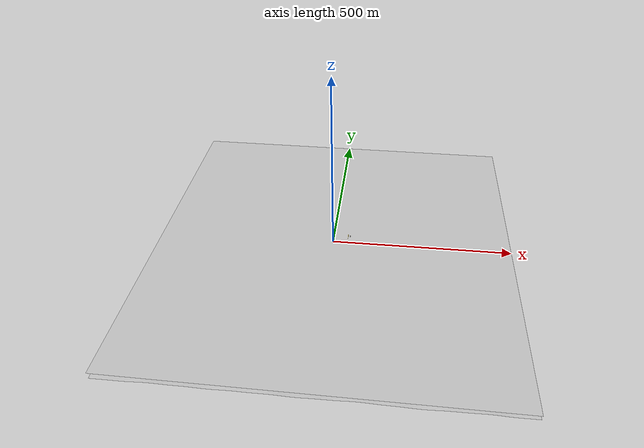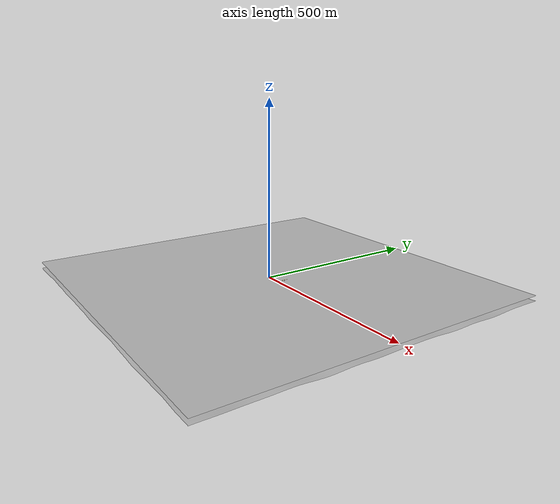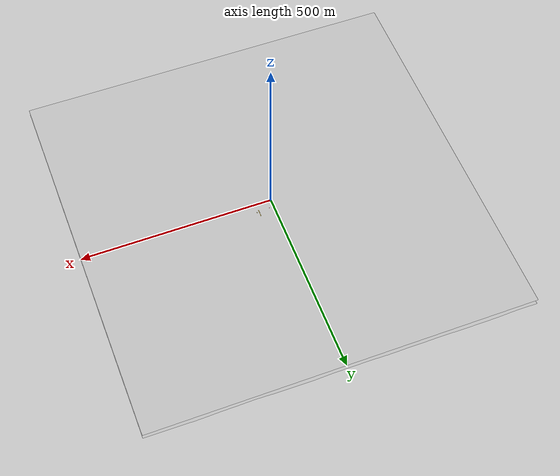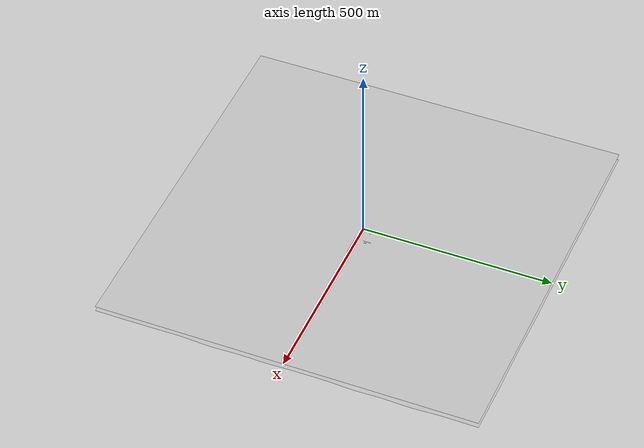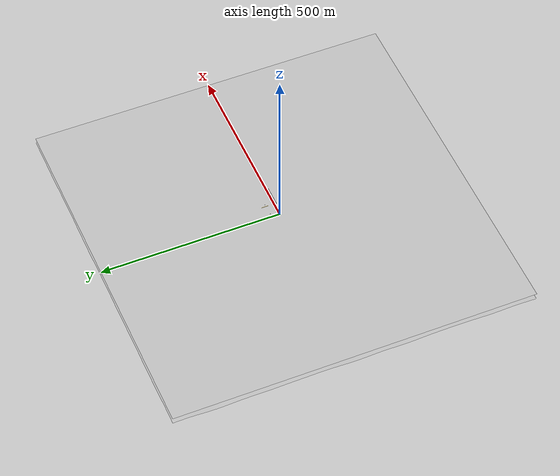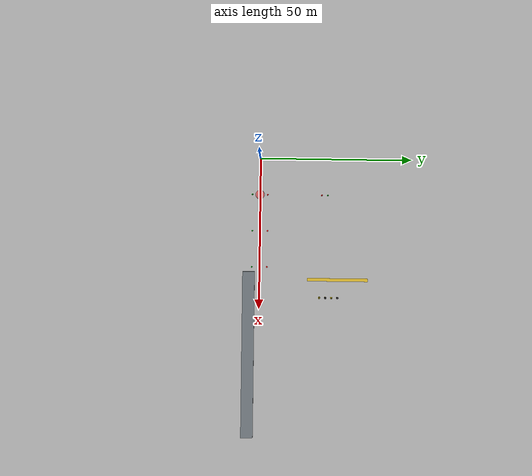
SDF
<sdf version="1.9">
 <world name="practice_world">
  <physics name="1ms" type="ignored">
   <max_step_size>0.002</max_step_size>
   <real_time_factor>1.0</real_time_factor>
  </physics>
  <scene><grid>false</grid></scene>
  <plugin filename="gz-sim-physics-system" name="gz::sim::systems::Physics"/>
  <plugin filename="gz-sim-user-commands-system" name="gz::sim::systems::UserCommands"/>
  <plugin filename="gz-sim-scene-broadcaster-system" name="gz::sim::systems::SceneBroadcaster"/>
  <plugin filename="gz-sim-contact-system" name="gz::sim::systems::Contact"/>
  <plugin filename="gz-sim-sensors-system" name="gz::sim::systems::Sensors">
   <render_engine>ogre2</render_engine>
  </plugin>
  <plugin filename="gz-sim-imu-system" name="gz::sim::systems::Imu"/>
  <plugin filename="gz-sim-navsat-system" name="gz::sim::systems::NavSat"/>
  <plugin filename="libscoring_system.so" name="regatta::ScoringSystem">
   <world_name>practice_world</world_name>
   <robot_name>blueboat</robot_name>
   <robot_link>base_link</robot_link>
   <activation_radius>3.0</activation_radius>
   <validation_radius>0.3</validation_radius>
   <cardinal_radius>20.0</cardinal_radius>
   <cardinal_penalty>2.0</cardinal_penalty>
   <max_points_per_waypoint>2.0</max_points_per_waypoint>
   <timeout>180.0</timeout>
   <output_file>scoring_result.json</output_file>
   <exit_on_finish>false</exit_on_finish>
  </plugin>
  <plugin filename="gz-sim-buoyancy-system" name="gz::sim::systems::Buoyancy">
   <graded_buoyancy>
    <default_density>1000.0</default_density>
    <density_change><above_depth>0</above_depth><density>1.2</density></density_change>
   </graded_buoyancy>
   <enable>blueboat</enable>
  </plugin>
  <plugin filename="libwave_simulation_system.so" name="regatta::WaveSimulationSystem">
   <stream_intensity>0.05</stream_intensity>
   <stream_direction_deg>45.0</stream_direction_deg>
   <waves>
    <wave>
     <amplitude>0.14</amplitude>
     <period>4.0</period>
     <direction_deg>30.0</direction_deg>
     <steepness>0.5</steepness>
    </wave>
    <wave>
     <amplitude>0.06</amplitude>
     <period>2.5</period>
     <direction_deg>60.0</direction_deg>
     <steepness>0.4</steepness>
    </wave>
    <wave>
     <amplitude>0.03</amplitude>
     <period>1.5</period>
     <direction_deg>15.0</direction_deg>
     <steepness>0.2</steepness>
    </wave>
   </waves>
   <robot_name>blueboat</robot_name>
   <robot_link>base_link</robot_link>
   <wave_heave_stiffness>100.0</wave_heave_stiffness>
   <wave_heave_damping>150.0</wave_heave_damping>
   <wave_roll_stiffness>15.0</wave_roll_stiffness>
   <wave_roll_damping>30.0</wave_roll_damping>
   <wave_pitch_stiffness>15.0</wave_pitch_stiffness>
   <wave_pitch_damping>30.0</wave_pitch_damping>
   <buoy_heave_amplitude_scale>1.0</buoy_heave_amplitude_scale>
   <buoy_tilt_scale>0.8</buoy_tilt_scale>
  </plugin>
  <plugin filename="libsemantic_buoy_sensor_system.so" name="regatta::SemanticBuoySensorSystem">
   <robot_name>blueboat</robot_name>
   <robot_link>base_link</robot_link>
   <topic>/blueboat/buoy_observations</topic>
   <legacy_topic>/blueboat/detected_buoys</legacy_topic>
   <publish_legacy_pose_v>true</publish_legacy_pose_v>
   <update_rate>1.0</update_rate>
   <fov_deg>110.0</fov_deg>
   <min_range>0.5</min_range>
   <max_range>35.0</max_range>
   <enable_noise>true</enable_noise>
   <noise_type>gaussian</noise_type>
   <range_noise_stddev>0.25</range_noise_stddev>
   <bearing_noise_deg_stddev>1.5</bearing_noise_deg_stddev>
   <range_noise_max>0.5</range_noise_max>
   <bearing_noise_max_deg>3.0</bearing_noise_max_deg>
  </plugin>
  <spherical_coordinates>
   <surface_model>EARTH_WGS84</surface_model>
   <world_frame_orientation>ENU</world_frame_orientation>
   <latitude_deg>48.0</latitude_deg>
   <longitude_deg>-4.5</longitude_deg>
   <elevation>0.0</elevation>
   <heading_deg>0.0</heading_deg>
  </spherical_coordinates>
  <light type="directional" name="sun">
   <pose>0 0 50 0 0 0</pose>
   <diffuse>0.9 0.9 0.9 1</diffuse>
   <specular>0.3 0.3 0.3 1</specular>
   <direction>-0.5 0.2 -1.0</direction>
  </light>
  <include><uri>model://waves</uri><name>waves</name></include>
  <include><uri>model://seafloor</uri><name>seafloor</name></include>
  <include>
   <uri>model://red_cylinder_buoy</uri>
   <name>gate_port_10</name>
   <pose>12.0 20.5 0.4 0 0 0</pose>
  </include>
  <include>
   <uri>model://green_cone_buoy</uri>
   <name>gate_starboard_10</name>
   <pose>12.0 22.5 0.4 0 0 0</pose>
  </include>
  <include>
   <uri>model://cardinal_south</uri>
   <name>cardinal_south</name>
   <pose>46.0 20.0 0.6 0 0 0</pose>
  </include>
  <include>
   <uri>model://cardinal_north</uri>
   <name>cardinal_north</name>
   <pose>46.0 22.0 0.6 0 0 0</pose>
  </include>
  <include><uri>model://cardinal_west</uri><name>cardinal_west</name><pose>46.0 24.0 0.6 0 0 0</pose></include>
  <include><uri>model://cardinal_east</uri><name>cardinal_east</name><pose>46.0 26.0 0.6 0 0 0</pose></include>
  <include><uri>model://finish_line</uri><name>finish_line</name><pose>40.0 26.0 0 0 0 0</pose></include>
  <model name="gate_port_1">
   <static>true</static>
   <pose>12.0 2.5 0.4 0 0 0</pose>
   <link name="link">
    <visual name="body">
     <geometry><cylinder><radius>0.25</radius><length>1.0</length></cylinder></geometry>
     <material><ambient>0.8 0.05 0.05 1</ambient><diffuse>0.95 0.1 0.1 1</diffuse></material>
    </visual>
    <visual name="topmark">
     <pose>0 0 0.65 0 0 0</pose>
     <geometry><cylinder><radius>0.15</radius><length>0.3</length></cylinder></geometry>
     <material><ambient>0.7 0.05 0.05 1</ambient><diffuse>0.9 0.1 0.1 1</diffuse></material>
    </visual>
   </link>
  </model>
  <model name="gate_starboard_1">
   <static>true</static>
   <pose>12.0 -2.5 0.4 0 0 0</pose>
   <link name="link">
    <visual name="body">
     <geometry><cone><radius>0.3</radius><length>1.0</length></cone></geometry>
     <material><ambient>0.05 0.75 0.1 1</ambient><diffuse>0.1 0.9 0.15 1</diffuse></material>
    </visual>
    <visual name="topmark">
     <pose>0 0 0.65 0 0 0</pose>
     <geometry><cone><radius>0.18</radius><length>0.35</length></cone></geometry>
     <material><ambient>0.05 0.7 0.1 1</ambient><diffuse>0.1 0.85 0.15 1</diffuse></material>
    </visual>
   </link>
  </model>
  <include><uri>model://waypoint</uri><name>waypoint_1</name><pose>12.0 0.0 0.0 0 0 0</pose></include>
  <model name="gate_port_2">
   <static>true</static>
   <pose>24.0 2.6 0.4 0 0 0</pose>
   <link name="link">
    <visual name="body">
     <geometry><cylinder><radius>0.25</radius><length>1.0</length></cylinder></geometry>
     <material><ambient>0.8 0.05 0.05 1</ambient><diffuse>0.95 0.1 0.1 1</diffuse></material>
    </visual>
   </link>
  </model>
  <model name="gate_starboard_2">
   <static>true</static>
   <pose>24.0 -2.4 0.4 0 0 0</pose>
   <link name="link">
    <visual name="body">
     <geometry><cone><radius>0.3</radius><length>1.0</length></cone></geometry>
     <material><ambient>0.05 0.75 0.1 1</ambient><diffuse>0.1 0.9 0.15 1</diffuse></material>
    </visual>
   </link>
  </model>
  <model name="gate_port_3">
   <static>true</static>
   <pose>36.0 2.5 0.4 0 0 0</pose>
   <link name="link">
    <visual name="body">
     <geometry><cylinder><radius>0.25</radius><length>1.0</length></cylinder></geometry>
     <material><ambient>0.8 0.05 0.05 1</ambient><diffuse>0.95 0.1 0.1 1</diffuse></material>
    </visual>
   </link>
  </model>
  <model name="gate_starboard_3">
   <static>true</static>
   <pose>36.0 -2.5 0.4 0 0 0</pose>
   <link name="link">
    <visual name="body">
     <geometry><cone><radius>0.3</radius><length>1.0</length></cone></geometry>
     <material><ambient>0.05 0.75 0.1 1</ambient><diffuse>0.1 0.9 0.15 1</diffuse></material>
    </visual>
   </link>
  </model>
  <model name="pier_wall">
   <static>true</static>
   <pose>65.0 -3.5 1.0 0 0 0</pose>
   <link name="pier_link">
    <collision name="pier_collision"><geometry><box><size>55.0 4.0 2.5</size></box></geometry></collision>
    <visual name="pier_visual">
     <geometry><box><size>55.0 4.0 2.5</size></box></geometry>
     <material><ambient>0.3 0.32 0.35 1</ambient><diffuse>0.45 0.48 0.5 1</diffuse></material>
    </visual>
   </link>
  </model>
 </world>
</sdf>

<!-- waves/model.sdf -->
<sdf version="1.9">
    <model name="waves">
        <static>true</static>
        <link name="link">
            <visual name="visual">
                <geometry>
                    <mesh>
                        <uri>meshes/mesh.dae</uri>
                    </mesh>
                </geometry>
                <plugin filename="gz-sim-shader-param-system" name="gz::sim::systems::ShaderParam">
                    <shader language="glsl">
                        <vertex>materials/programs/GerstnerWaves_vs_330.glsl</vertex>
                        <fragment>materials/programs/GerstnerWaves_fs_330.glsl</fragment>
                    </shader>
                    <shader language="metal">
                        <vertex>materials/programs/GerstnerWaves_vs.metal</vertex>
                        <fragment>materials/programs/GerstnerWaves_fs.metal</fragment>
                    </shader>
                    <param>
                        <shader>vertex</shader>
                        <name>Nwaves</name>
                        <type>int</type>
                        <value>3</value>
                    </param>
                    <param>
                        <shader>vertex</shader>
                        <name>rescale</name>
                        <type>float</type>
                        <value>0.5</value>
                    </param>
                    <param>
                        <shader>vertex</shader>
                        <name>bumpScale</name>
                        <type>float_array</type>
                        <value>25 25</value>
                    </param>
                    <param>
                        <shader>vertex</shader>
                        <name>bumpSpeed</name>
                        <type>float_array</type>
                        <value>0.01 0.01</value>
                    </param>
                    <param>
                        <shader>vertex</shader>
                        <name>amplitude</name>
                        <type>float_array</type>
                        <value>0.14 0.06 0.03</value>
                    </param>
                    <param>
                        <shader>vertex</shader>
                        <name>wavenumber</name>
                        <type>float_array</type>
                        <value>0.2516 0.6441 1.7891</value>
                    </param>
                    <param>
                        <shader>vertex</shader>
                        <name>omega</name>
                        <type>float_array</type>
                        <value>1.5708 2.5133 4.1888</value>
                    </param>
                    <param>
                        <shader>vertex</shader>
                        <name>dir0</name>
                        <type>float_array</type>
                        <value>0.8660 0.5000</value>
                    </param>
                    <param>
                        <shader>vertex</shader>
                        <name>dir1</name>
                        <type>float_array</type>
                        <value>0.5000 0.8660</value>
                    </param>
                    <param>
                        <shader>vertex</shader>
                        <name>dir2</name>
                        <type>float_array</type>
                        <value>0.9659 0.2588</value>
                    </param>
                    <param>
                        <shader>vertex</shader>
                        <name>steepness</name>
                        <type>float_array</type>
                        <value>0.5 0.4 0.2</value>
                    </param>
                    <param>
                        <shader>vertex</shader>
                        <name>tau</name>
                        <type>float</type>
                        <value>0.01</value>
                    </param>
                    <param>
                        <shader>vertex</shader>
                        <name>camera_position_object_space</name>
                    </param>
                    <param>
                        <shader>vertex</shader>
                        <name>worldviewproj_matrix</name>
                    </param>
                    <param>
                        <shader>vertex</shader>
                        <name>t</name>
                        <value>TIME</value>
                    </param>
                    <param>
                        <shader>fragment</shader>
                        <name>hdrMultiplier</name>
                        <type>float</type>
                        <value>0.4</value>
                    </param>
                    <param>
                        <shader>fragment</shader>
                        <name>fresnelPower</name>
                        <type>float</type>
                        <value>5.0</value>
                    </param>
                    <param>
                        <shader>fragment</shader>
                        <name>shallowColor</name>
                        <type>float_array</type>
                        <value>0.0 0.1 0.3 1.0</value>
                    </param>
                    <param>
                        <shader>fragment</shader>
                        <name>deepColor</name>
                        <type>float_array</type>
                        <value>0.0 0.05 0.02 1.0</value>
                    </param>
                    <param>
                        <shader>fragment</shader>
                        <name>cubeMap</name>
                        <type>texture_cube</type>
                        <value>materials/textures/skybox_lowres.dds</value>
                        <!-- arg: texture coord set index -->
                        <arg>1</arg>
                    </param>
                    <param>
                        <shader>fragment</shader>
                        <name>bumpMap</name>
                        <type>texture</type>
                        <value>materials/textures/wave_normals.dds</value>
                    </param>
                </plugin>
            </visual>
        </link>
    </model>
</sdf>

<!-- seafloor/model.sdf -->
<sdf version="1.9">
  <model name="seafloor">
    <static>true</static>
    <link name="seafloor_link">
      <!-- High-Fidelity Photorealistic Visual Mesh (Zero Collision Overhead) -->
      <visual name="seafloor_visual">
        <pose>0 0 0 0 0 0</pose>
        <geometry>
          <mesh>
            <uri>model://seafloor/meshes/seafloor.obj</uri>
          </mesh>
        </geometry>
      </visual>
    </link>
  </model>
</sdf>

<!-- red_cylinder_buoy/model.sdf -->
<sdf version="1.9">
  <model name="red_cylinder_buoy">
    <static>true</static>
    <link name="link">
      <collision name="body_collision">
        <geometry>
          <cylinder>
            <radius>0.25</radius>
            <length>1.0</length>
          </cylinder>
        </geometry>
      </collision>
      <visual name="body">
        <geometry>
          <cylinder>
            <radius>0.25</radius>
            <length>1.0</length>
          </cylinder>
        </geometry>
        <material>
          <ambient>0.8 0.05 0.05 1</ambient>
          <diffuse>0.95 0.1 0.1 1</diffuse>
        </material>
      </visual>

      <collision name="topmark_collision">
        <pose>0 0 0.65 0 0 0</pose>
        <geometry>
          <cylinder>
            <radius>0.15</radius>
            <length>0.3</length>
          </cylinder>
        </geometry>
      </collision>
      <visual name="topmark">
        <pose>0 0 0.65 0 0 0</pose>
        <geometry>
          <cylinder>
            <radius>0.15</radius>
            <length>0.3</length>
          </cylinder>
        </geometry>
        <material>
          <ambient>0.7 0.05 0.05 1</ambient>
          <diffuse>0.9 0.1 0.1 1</diffuse>
        </material>
      </visual>
    </link>
  </model>
</sdf>

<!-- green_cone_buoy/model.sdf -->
<sdf version="1.9">
  <model name="green_cone_buoy">
    <static>true</static>
    <link name="link">
      <collision name="body_collision">
        <geometry>
          <cone>
            <radius>0.3</radius>
            <length>1.0</length>
          </cone>
        </geometry>
      </collision>
      <visual name="body">
        <geometry>
          <cone>
            <radius>0.3</radius>
            <length>1.0</length>
          </cone>
        </geometry>
        <material>
          <ambient>0.05 0.75 0.1 1</ambient>
          <diffuse>0.1 0.9 0.15 1</diffuse>
        </material>
      </visual>

      <collision name="topmark_collision">
        <pose>0 0 0.65 0 0 0</pose>
        <geometry>
          <cone>
            <radius>0.18</radius>
            <length>0.35</length>
          </cone>
        </geometry>
      </collision>
      <visual name="topmark">
        <pose>0 0 0.65 0 0 0</pose>
        <geometry>
          <cone>
            <radius>0.18</radius>
            <length>0.35</length>
          </cone>
        </geometry>
        <material>
          <ambient>0.05 0.7 0.1 1</ambient>
          <diffuse>0.1 0.85 0.15 1</diffuse>
        </material>
      </visual>
    </link>
  </model>
</sdf>

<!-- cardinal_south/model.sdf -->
<sdf version="1.9">
  <model name="cardinal_south">
    <static>true</static>
    <link name="link">
      <!-- Mast Top (Yellow) -->
      <collision name="mast_top_collision">
        <pose>0 0 0.375 0 0 0</pose>
        <geometry>
          <cylinder>
            <radius>0.35</radius>
            <length>0.75</length>
          </cylinder>
        </geometry>
      </collision>
      <visual name="mast_top">
        <pose>0 0 0.375 0 0 0</pose>
        <geometry>
          <cylinder>
            <radius>0.35</radius>
            <length>0.75</length>
          </cylinder>
        </geometry>
        <material>
          <ambient>0.85 0.75 0.05 1</ambient>
          <diffuse>0.95 0.85 0.05 1</diffuse>
        </material>
      </visual>

      <!-- Mast Bottom (Black) -->
      <collision name="mast_bottom_collision">
        <pose>0 0 -0.375 0 0 0</pose>
        <geometry>
          <cylinder>
            <radius>0.35</radius>
            <length>0.75</length>
          </cylinder>
        </geometry>
      </collision>
      <visual name="mast_bottom">
        <pose>0 0 -0.375 0 0 0</pose>
        <geometry>
          <cylinder>
            <radius>0.35</radius>
            <length>0.75</length>
          </cylinder>
        </geometry>
        <material>
          <ambient>0.1 0.1 0.1 1</ambient>
          <diffuse>0.15 0.15 0.15 1</diffuse>
        </material>
      </visual>

      <!-- Topmark Cones (Both pointing DOWN) -->
      <visual name="cone_lower">
        <pose>0 0 1.0 0 3.14159265359 0</pose>
        <geometry>
          <cone>
            <radius>0.18</radius>
            <length>0.25</length>
          </cone>
        </geometry>
        <material>
          <ambient>0.1 0.1 0.1 1</ambient>
          <diffuse>0.15 0.15 0.15 1</diffuse>
        </material>
      </visual>

      <visual name="cone_upper">
        <pose>0 0 1.3 0 3.14159265359 0</pose>
        <geometry>
          <cone>
            <radius>0.18</radius>
            <length>0.25</length>
          </cone>
        </geometry>
        <material>
          <ambient>0.1 0.1 0.1 1</ambient>
          <diffuse>0.15 0.15 0.15 1</diffuse>
        </material>
      </visual>
    </link>
  </model>
</sdf>

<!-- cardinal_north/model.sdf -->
<sdf version="1.9">
  <model name="cardinal_north">
    <static>true</static>
    <link name="link">
      <!-- Mast Top (Black) -->
      <collision name="mast_top_collision">
        <pose>0 0 0.375 0 0 0</pose>
        <geometry>
          <cylinder>
            <radius>0.35</radius>
            <length>0.75</length>
          </cylinder>
        </geometry>
      </collision>
      <visual name="mast_top">
        <pose>0 0 0.375 0 0 0</pose>
        <geometry>
          <cylinder>
            <radius>0.35</radius>
            <length>0.75</length>
          </cylinder>
        </geometry>
        <material>
          <ambient>0.1 0.1 0.1 1</ambient>
          <diffuse>0.15 0.15 0.15 1</diffuse>
        </material>
      </visual>

      <!-- Mast Bottom (Yellow) -->
      <collision name="mast_bottom_collision">
        <pose>0 0 -0.375 0 0 0</pose>
        <geometry>
          <cylinder>
            <radius>0.35</radius>
            <length>0.75</length>
          </cylinder>
        </geometry>
      </collision>
      <visual name="mast_bottom">
        <pose>0 0 -0.375 0 0 0</pose>
        <geometry>
          <cylinder>
            <radius>0.35</radius>
            <length>0.75</length>
          </cylinder>
        </geometry>
        <material>
          <ambient>0.85 0.75 0.05 1</ambient>
          <diffuse>0.95 0.85 0.05 1</diffuse>
        </material>
      </visual>

      <!-- Topmark Cones (Both pointing UP) -->
      <visual name="cone_lower">
        <pose>0 0 1.0 0 0 0</pose>
        <geometry>
          <cone>
            <radius>0.18</radius>
            <length>0.25</length>
          </cone>
        </geometry>
        <material>
          <ambient>0.1 0.1 0.1 1</ambient>
          <diffuse>0.15 0.15 0.15 1</diffuse>
        </material>
      </visual>

      <visual name="cone_upper">
        <pose>0 0 1.3 0 0 0</pose>
        <geometry>
          <cone>
            <radius>0.18</radius>
            <length>0.25</length>
          </cone>
        </geometry>
        <material>
          <ambient>0.1 0.1 0.1 1</ambient>
          <diffuse>0.15 0.15 0.15 1</diffuse>
        </material>
      </visual>
    </link>
  </model>
</sdf>

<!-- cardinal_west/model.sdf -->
<sdf version="1.9">
  <model name="cardinal_west">
    <static>true</static>
    <link name="link">
      <!-- Mast Top (Yellow) -->
      <collision name="mast_top_collision">
        <pose>0 0 0.5 0 0 0</pose>
        <geometry>
          <cylinder>
            <radius>0.35</radius>
            <length>0.5</length>
          </cylinder>
        </geometry>
      </collision>
      <visual name="mast_top">
        <pose>0 0 0.5 0 0 0</pose>
        <geometry>
          <cylinder>
            <radius>0.35</radius>
            <length>0.5</length>
          </cylinder>
        </geometry>
        <material>
          <ambient>0.85 0.75 0.05 1</ambient>
          <diffuse>0.95 0.85 0.05 1</diffuse>
        </material>
      </visual>

      <!-- Mast Middle (Black) -->
      <collision name="mast_middle_collision">
        <pose>0 0 0.0 0 0 0</pose>
        <geometry>
          <cylinder>
            <radius>0.35</radius>
            <length>0.5</length>
          </cylinder>
        </geometry>
      </collision>
      <visual name="mast_middle">
        <pose>0 0 0.0 0 0 0</pose>
        <geometry>
          <cylinder>
            <radius>0.35</radius>
            <length>0.5</length>
          </cylinder>
        </geometry>
        <material>
          <ambient>0.1 0.1 0.1 1</ambient>
          <diffuse>0.15 0.15 0.15 1</diffuse>
        </material>
      </visual>

      <!-- Mast Bottom (Yellow) -->
      <collision name="mast_bottom_collision">
        <pose>0 0 -0.5 0 0 0</pose>
        <geometry>
          <cylinder>
            <radius>0.35</radius>
            <length>0.5</length>
          </cylinder>
        </geometry>
      </collision>
      <visual name="mast_bottom">
        <pose>0 0 -0.5 0 0 0</pose>
        <geometry>
          <cylinder>
            <radius>0.35</radius>
            <length>0.5</length>
          </cylinder>
        </geometry>
        <material>
          <ambient>0.85 0.75 0.05 1</ambient>
          <diffuse>0.95 0.85 0.05 1</diffuse>
        </material>
      </visual>

      <!-- Topmark Cones (Point-to-point: Lower points UP, Upper points DOWN) -->
      <visual name="cone_lower">
        <pose>0 0 1.0 0 0 0</pose>
        <geometry>
          <cone>
            <radius>0.18</radius>
            <length>0.25</length>
          </cone>
        </geometry>
        <material>
          <ambient>0.1 0.1 0.1 1</ambient>
          <diffuse>0.15 0.15 0.15 1</diffuse>
        </material>
      </visual>

      <visual name="cone_upper">
        <pose>0 0 1.3 0 3.14159265359 0</pose>
        <geometry>
          <cone>
            <radius>0.18</radius>
            <length>0.25</length>
          </cone>
        </geometry>
        <material>
          <ambient>0.1 0.1 0.1 1</ambient>
          <diffuse>0.15 0.15 0.15 1</diffuse>
        </material>
      </visual>
    </link>
  </model>
</sdf>

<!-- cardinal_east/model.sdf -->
<sdf version="1.9">
  <model name="cardinal_east">
    <static>true</static>
    <link name="link">
      <!-- Mast Top (Black) -->
      <collision name="mast_top_collision">
        <pose>0 0 0.5 0 0 0</pose>
        <geometry>
          <cylinder>
            <radius>0.35</radius>
            <length>0.5</length>
          </cylinder>
        </geometry>
      </collision>
      <visual name="mast_top">
        <pose>0 0 0.5 0 0 0</pose>
        <geometry>
          <cylinder>
            <radius>0.35</radius>
            <length>0.5</length>
          </cylinder>
        </geometry>
        <material>
          <ambient>0.1 0.1 0.1 1</ambient>
          <diffuse>0.15 0.15 0.15 1</diffuse>
        </material>
      </visual>

      <!-- Mast Middle (Yellow) -->
      <collision name="mast_middle_collision">
        <pose>0 0 0.0 0 0 0</pose>
        <geometry>
          <cylinder>
            <radius>0.35</radius>
            <length>0.5</length>
          </cylinder>
        </geometry>
      </collision>
      <visual name="mast_middle">
        <pose>0 0 0.0 0 0 0</pose>
        <geometry>
          <cylinder>
            <radius>0.35</radius>
            <length>0.5</length>
          </cylinder>
        </geometry>
        <material>
          <ambient>0.85 0.75 0.05 1</ambient>
          <diffuse>0.95 0.85 0.05 1</diffuse>
        </material>
      </visual>

      <!-- Mast Bottom (Black) -->
      <collision name="mast_bottom_collision">
        <pose>0 0 -0.5 0 0 0</pose>
        <geometry>
          <cylinder>
            <radius>0.35</radius>
            <length>0.5</length>
          </cylinder>
        </geometry>
      </collision>
      <visual name="mast_bottom">
        <pose>0 0 -0.5 0 0 0</pose>
        <geometry>
          <cylinder>
            <radius>0.35</radius>
            <length>0.5</length>
          </cylinder>
        </geometry>
        <material>
          <ambient>0.1 0.1 0.1 1</ambient>
          <diffuse>0.15 0.15 0.15 1</diffuse>
        </material>
      </visual>

      <!-- Topmark Cones (Base-to-base: Lower points DOWN, Upper points UP) -->
      <visual name="cone_lower">
        <pose>0 0 1.0 0 3.14159265359 0</pose>
        <geometry>
          <cone>
            <radius>0.18</radius>
            <length>0.25</length>
          </cone>
        </geometry>
        <material>
          <ambient>0.1 0.1 0.1 1</ambient>
          <diffuse>0.15 0.15 0.15 1</diffuse>
        </material>
      </visual>

      <visual name="cone_upper">
        <pose>0 0 1.3 0 0 0</pose>
        <geometry>
          <cone>
            <radius>0.18</radius>
            <length>0.25</length>
          </cone>
        </geometry>
        <material>
          <ambient>0.1 0.1 0.1 1</ambient>
          <diffuse>0.15 0.15 0.15 1</diffuse>
        </material>
      </visual>
    </link>
  </model>
</sdf>

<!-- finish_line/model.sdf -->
<sdf version="1.9">
  <model name="finish_line">
    <static>true</static>

    <link name="base_link">
      <pose>0 0 0 0 0 0</pose>
      <visual name="chassis_visual">
        <geometry>
          <box>
            <size>1.0 20 0.4</size>
          </box>
        </geometry>
        <material>
          <ambient>1.0 0.8 0.0 0.7</ambient>
          <diffuse>1.0 0.8 0.0 0.7</diffuse>
        </material>
      </visual>
    </link>
  </model>
</sdf>

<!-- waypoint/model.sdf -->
<sdf version="1.9">
  <model name="waypoint">
    <static>true</static>
    <link name="link">
      <visual name="capsule_visual">
        <geometry>
          <ellipsoid>
            <radii>1.5 1.5 0.4</radii>
          </ellipsoid>
        </geometry>
        <material>
          <ambient>1.0 0.05 0.05 0.45</ambient>
          <diffuse>1.0 0.1 0.1 0.45</diffuse>
          <specular>0.7 0.7 0.7 0.45</specular>
          <emissive>0.25 0.02 0.02 1.0</emissive>
        </material>
      </visual>
    </link>
  </model>
</sdf>
